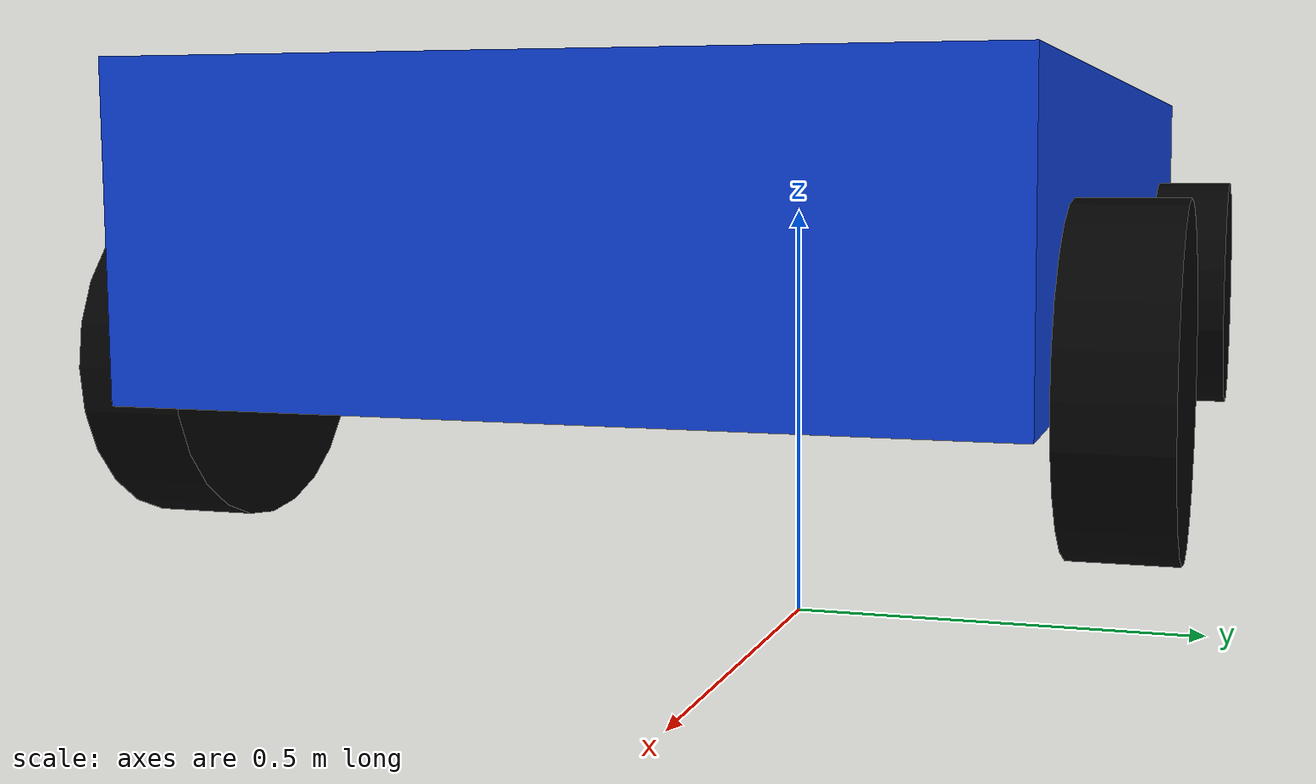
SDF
<?xml version="1.0" ?>
<sdf version="1.8">
  <model name="ackermann_car">

    <pose>0 0 0.25 0 0 0</pose>

    <!-- Chassis -->
    <link name="chassis_link">
      <pose>0 0 0.25 0 0 0</pose>

      <inertial>
        <mass>12.0</mass>
        <inertia>
          <ixx>0.45</ixx>
          <iyy>1.20</iyy>
          <izz>1.50</izz>
          <ixy>0</ixy>
          <ixz>0</ixz>
          <iyz>0</iyz>
        </inertia>
      </inertial>

      <collision name="chassis_collision">
        <geometry>
          <box>
            <size>1.6 0.8 0.30</size>
          </box>
        </geometry>
      </collision>

      <visual name="chassis_visual">
        <geometry>
          <box>
            <size>1.6 0.8 0.30</size>
          </box>
        </geometry>
        <material>
          <ambient>0.05 0.25 0.85 1</ambient>
          <diffuse>0.05 0.25 0.85 1</diffuse>
        </material>
      </visual>
    </link>

    <!-- Front steering knuckles -->
    <link name="front_left_steer_link">
      <pose>0.55 0.45 0.12 0 0 0</pose>
      <inertial>
        <mass>0.4</mass>
        <inertia>
          <ixx>0.002</ixx>
          <iyy>0.002</iyy>
          <izz>0.002</izz>
        </inertia>
      </inertial>
    </link>

    <link name="front_right_steer_link">
      <pose>0.55 -0.45 0.12 0 0 0</pose>
      <inertial>
        <mass>0.4</mass>
        <inertia>
          <ixx>0.002</ixx>
          <iyy>0.002</iyy>
          <izz>0.002</izz>
        </inertia>
      </inertial>
    </link>

    <!-- Front left wheel -->
    <link name="front_left_wheel">
      <pose>0.55 0.45 0.12 1.5708 0 0</pose>

      <inertial>
        <mass>0.8</mass>
        <inertia>
          <ixx>0.006</ixx>
          <iyy>0.006</iyy>
          <izz>0.006</izz>
        </inertia>
      </inertial>

      <collision name="collision">
        <geometry>
          <cylinder>
            <radius>0.16</radius>
            <length>0.10</length>
          </cylinder>
        </geometry>
      </collision>

      <visual name="visual">
        <geometry>
          <cylinder>
            <radius>0.16</radius>
            <length>0.10</length>
          </cylinder>
        </geometry>
        <material>
          <ambient>0.01 0.01 0.01 1</ambient>
          <diffuse>0.01 0.01 0.01 1</diffuse>
        </material>
      </visual>
    </link>

    <!-- Front right wheel -->
    <link name="front_right_wheel">
      <pose>0.55 -0.45 0.12 1.5708 0 0</pose>

      <inertial>
        <mass>0.8</mass>
        <inertia>
          <ixx>0.006</ixx>
          <iyy>0.006</iyy>
          <izz>0.006</izz>
        </inertia>
      </inertial>

      <collision name="collision">
        <geometry>
          <cylinder>
            <radius>0.16</radius>
            <length>0.10</length>
          </cylinder>
        </geometry>
      </collision>

      <visual name="visual">
        <geometry>
          <cylinder>
            <radius>0.16</radius>
            <length>0.10</length>
          </cylinder>
        </geometry>
        <material>
          <ambient>0.01 0.01 0.01 1</ambient>
          <diffuse>0.01 0.01 0.01 1</diffuse>
        </material>
      </visual>
    </link>

    <!-- Rear left wheel -->
    <link name="rear_left_wheel">
      <pose>-0.55 0.45 0.12 1.5708 0 0</pose>

      <inertial>
        <mass>0.8</mass>
        <inertia>
          <ixx>0.006</ixx>
          <iyy>0.006</iyy>
          <izz>0.006</izz>
        </inertia>
      </inertial>

      <collision name="collision">
        <geometry>
          <cylinder>
            <radius>0.16</radius>
            <length>0.10</length>
          </cylinder>
        </geometry>
      </collision>

      <visual name="visual">
        <geometry>
          <cylinder>
            <radius>0.16</radius>
            <length>0.10</length>
          </cylinder>
        </geometry>
        <material>
          <ambient>0.01 0.01 0.01 1</ambient>
          <diffuse>0.01 0.01 0.01 1</diffuse>
        </material>
      </visual>
    </link>

    <!-- Rear right wheel -->
    <link name="rear_right_wheel">
      <pose>-0.55 -0.45 0.12 1.5708 0 0</pose>

      <inertial>
        <mass>0.8</mass>
        <inertia>
          <ixx>0.006</ixx>
          <iyy>0.006</iyy>
          <izz>0.006</izz>
        </inertia>
      </inertial>

      <collision name="collision">
        <geometry>
          <cylinder>
            <radius>0.16</radius>
            <length>0.10</length>
          </cylinder>
        </geometry>
      </collision>

      <visual name="visual">
        <geometry>
          <cylinder>
            <radius>0.16</radius>
            <length>0.10</length>
          </cylinder>
        </geometry>
        <material>
          <ambient>0.01 0.01 0.01 1</ambient>
          <diffuse>0.01 0.01 0.01 1</diffuse>
        </material>
      </visual>
    </link>

    <!-- Steering joints -->
    <joint name="front_left_steer_joint" type="revolute">
      <parent>chassis_link</parent>
      <child>front_left_steer_link</child>
      <pose>0.55 0.45 0.12 0 0 0</pose>
      <axis>
        <xyz>0 0 1</xyz>
        <limit>
          <lower>-0.6</lower>
          <upper>0.6</upper>
          <effort>20</effort>
          <velocity>2</velocity>
        </limit>
      </axis>
    </joint>

    <joint name="front_right_steer_joint" type="revolute">
      <parent>chassis_link</parent>
      <child>front_right_steer_link</child>
      <pose>0.55 -0.45 0.12 0 0 0</pose>
      <axis>
        <xyz>0 0 1</xyz>
        <limit>
          <lower>-0.6</lower>
          <upper>0.6</upper>
          <effort>20</effort>
          <velocity>2</velocity>
        </limit>
      </axis>
    </joint>

    <!-- Wheel spin joints -->
    <joint name="front_left_wheel_joint" type="revolute">
      <parent>front_left_steer_link</parent>
      <child>front_left_wheel</child>
      <axis>
        <xyz>0 1 0</xyz>
        <limit>
          <lower>-1e16</lower>
          <upper>1e16</upper>
        </limit>
      </axis>
    </joint>

    <joint name="front_right_wheel_joint" type="revolute">
      <parent>front_right_steer_link</parent>
      <child>front_right_wheel</child>
      <axis>
        <xyz>0 1 0</xyz>
        <limit>
          <lower>-1e16</lower>
          <upper>1e16</upper>
        </limit>
      </axis>
    </joint>

    <joint name="rear_left_wheel_joint" type="revolute">
      <parent>chassis_link</parent>
      <child>rear_left_wheel</child>
      <pose>-0.55 0.45 0.12 0 0 0</pose>
      <axis>
        <xyz>0 1 0</xyz>
        <limit>
          <lower>-1e16</lower>
          <upper>1e16</upper>
        </limit>
      </axis>
    </joint>

    <joint name="rear_right_wheel_joint" type="revolute">
      <parent>chassis_link</parent>
      <child>rear_right_wheel</child>
      <pose>-0.55 -0.45 0.12 0 0 0</pose>
      <axis>
        <xyz>0 1 0</xyz>
        <limit>
          <lower>-1e16</lower>
          <upper>1e16</upper>
        </limit>
      </axis>
    </joint>

    <!-- Ackermann controller -->
    <plugin
      filename="ignition-gazebo-ackermann-steering-system"
      name="ignition::gazebo::systems::AckermannSteering">

      <!-- Rear driving wheels -->
      <left_joint>rear_left_wheel_joint</left_joint>
      <right_joint>rear_right_wheel_joint</right_joint>

      <!-- Front steering joints -->
      <left_steering_joint>front_left_steer_joint</left_steering_joint>
      <right_steering_joint>front_right_steer_joint</right_steering_joint>

      <wheel_separation>0.90</wheel_separation>
      <kingpin_width>0.90</kingpin_width>
      <wheel_base>1.10</wheel_base>
      <wheel_radius>0.16</wheel_radius>
      <steering_limit>0.6</steering_limit>

      <min_velocity>-2.0</min_velocity>
      <max_velocity>2.0</max_velocity>
      <min_acceleration>-2.5</min_acceleration>
      <max_acceleration>2.5</max_acceleration>

      <topic>/model/ackermann_car/cmd_vel</topic>
      <odom_topic>/model/ackermann_car/odometry</odom_topic>
      <tf_topic>/model/ackermann_car/tf</tf_topic>
      <odom_publish_frequency>50</odom_publish_frequency>

      <frame_id>ackermann_car/odom</frame_id>
      <child_frame_id>ackermann_car/chassis_link</child_frame_id>
    </plugin>

  </model>
</sdf>
